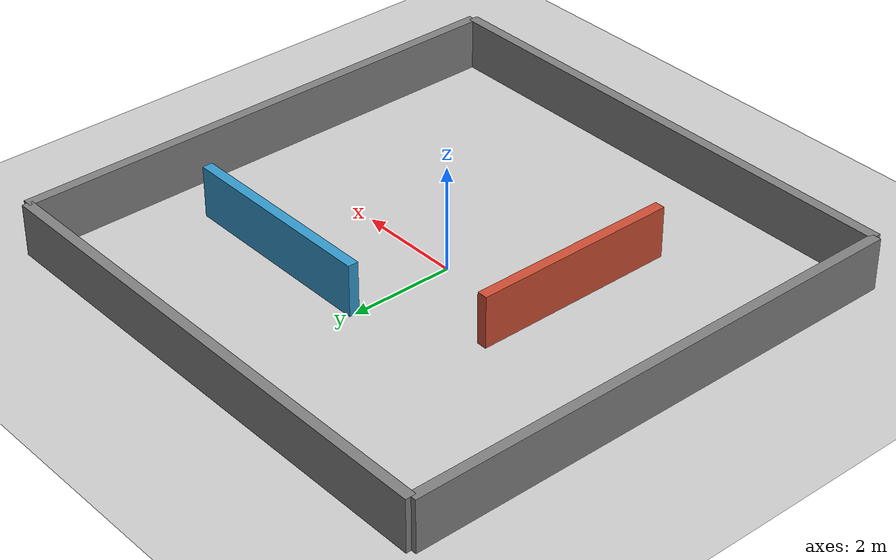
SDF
<?xml version="1.0" ?>
<sdf version="1.8">
  <world name="maze_world">
    <!-- 4 Plugin cốt lõi -->
    <plugin filename="gz-sim-physics-system" name="gz::sim::systems::Physics"/>
    <plugin filename="gz-sim-user-commands-system" name="gz::sim::systems::UserCommands"/>
    <plugin filename="gz-sim-scene-broadcaster-system" name="gz::sim::systems::SceneBroadcaster"/>
    <plugin filename="gz-sim-sensors-system" name="gz::sim::systems::Sensors">
      <render_engine>ogre2</render_engine>
    </plugin>

    <!-- Ánh sáng & Mặt đất -->
    <light type="directional" name="sun">
      <cast_shadows>true</cast_shadows>
      <pose>0 0 10 0 0 0</pose>
      <diffuse>0.8 0.8 0.8 1</diffuse>
      <specular>0.2 0.2 0.2 1</specular>
      <direction>-0.5 0.1 -0.9</direction>
    </light>
    <model name="ground_plane">
      <static>true</static>
      <link name="link">
        <collision name="collision"><geometry><plane><normal>0 0 1</normal></plane></geometry></collision>
        <visual name="visual">
          <geometry><plane><normal>0 0 1</normal><size>100 100</size></plane></geometry>
          <material><ambient>0.8 0.8 0.8 1</ambient><diffuse>0.8 0.8 0.8 1</diffuse></material>
        </visual>
      </link>
    </model>

    <!-- TƯỜNG BAO QUANH VÀ VÁCH NGĂN -->
    <model name="maze_walls">
      <static>true</static>
      <!-- Tường Bắc & Nam -->
      <link name="wall_n"><pose>0 5 0.5 0 0 0</pose><collision name="c"><geometry><box><size>10 0.2 1</size></box></geometry></collision><visual name="v"><geometry><box><size>10 0.2 1</size></box></geometry><material><ambient>0.5 0.5 0.5 1</ambient></material></visual></link>
      <link name="wall_s"><pose>0 -5 0.5 0 0 0</pose><collision name="c"><geometry><box><size>10 0.2 1</size></box></geometry></collision><visual name="v"><geometry><box><size>10 0.2 1</size></box></geometry><material><ambient>0.5 0.5 0.5 1</ambient></material></visual></link>
      <!-- Tường Đông & Tây -->
      <link name="wall_e"><pose>5 0 0.5 0 0 0</pose><collision name="c"><geometry><box><size>0.2 10 1</size></box></geometry></collision><visual name="v"><geometry><box><size>0.2 10 1</size></box></geometry><material><ambient>0.5 0.5 0.5 1</ambient></material></visual></link>
      <link name="wall_w"><pose>-5 0 0.5 0 0 0</pose><collision name="c"><geometry><box><size>0.2 10 1</size></box></geometry></collision><visual name="v"><geometry><box><size>0.2 10 1</size></box></geometry><material><ambient>0.5 0.5 0.5 1</ambient></material></visual></link>
      <!-- Vách ngăn trong -->
      <link name="inner_1"><pose>2 2 0.5 0 0 0</pose><collision name="c"><geometry><box><size>4 0.2 1</size></box></geometry></collision><visual name="v"><geometry><box><size>4 0.2 1</size></box></geometry><material><ambient>0.2 0.6 0.8 1</ambient></material></visual></link>
      <link name="inner_2"><pose>-2 -1 0.5 0 0 0</pose><collision name="c"><geometry><box><size>0.2 4 1</size></box></geometry></collision><visual name="v"><geometry><box><size>0.2 4 1</size></box></geometry><material><ambient>0.8 0.3 0.2 1</ambient></material></visual></link>
    </model>
  </world>
</sdf>
